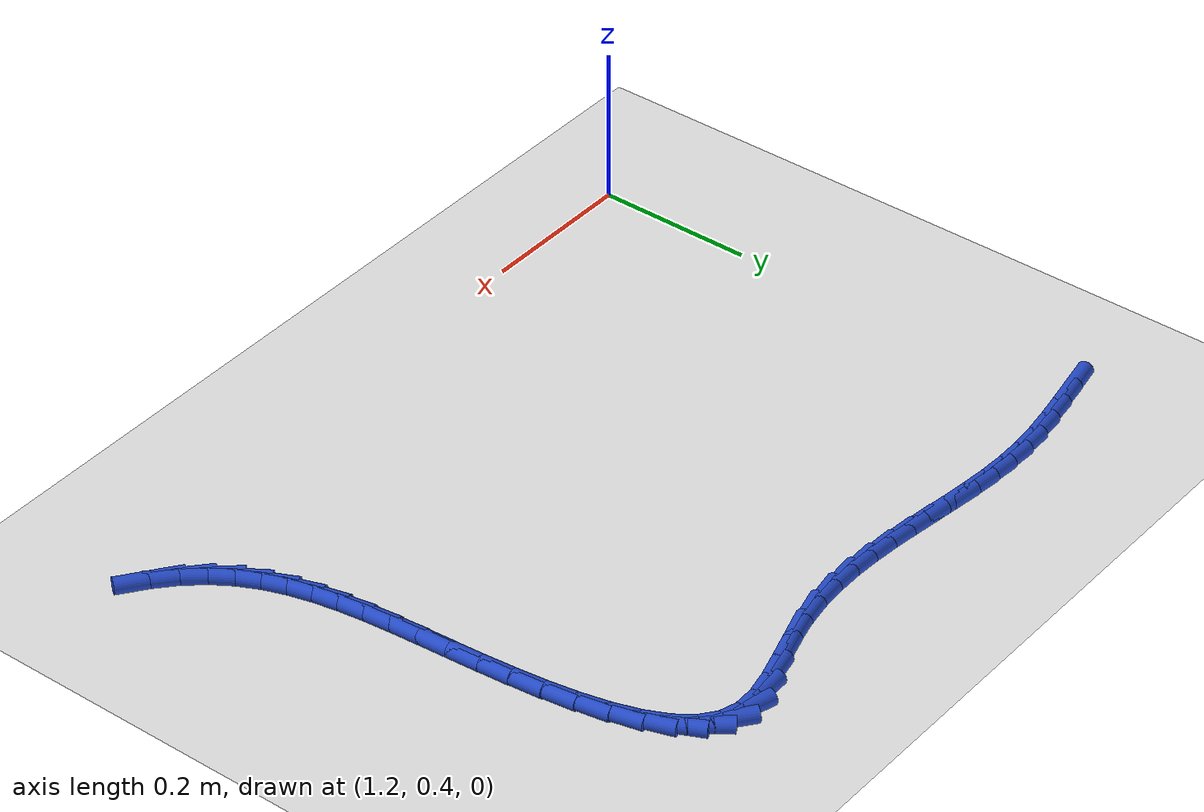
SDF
<sdf version="1.6">
 <world name="default">
  <model name="ground_plane">
   <static>1</static>
   <link name="link">
    <collision name="collision">
     <geometry><plane><normal>0 0 1</normal><size>100 100</size></plane></geometry>
     <surface><friction><ode><mu>100</mu><mu2>50</mu2></ode></friction></surface>
    </collision>
    <visual name="visual">
     <cast_shadows>0</cast_shadows>
     <geometry><plane><normal>0 0 1</normal><size>100 100</size></plane></geometry>
     <material>
      <script><uri>file://media/materials/scripts/gazebo.material</uri><name>Gazebo/WhiteGlow</name></script>
     </material>
    </visual>
   </link>
  </model>
  <model name="line">
   <link name="link_62">
    <pose>1.1844232793543754 1.0554053043927392 0.01 0 1.57 0.1845356645171906</pose>
    <collision name="collision">
     <geometry><cylinder><radius>0.01</radius><length>0.08</length></cylinder></geometry>
    </collision>
    <visual name="visual">
     <material>
      <script><name>Gazebo/Blue</name><uri>file://media/materials/scripts/gazebo.material</uri></script>
     </material>
     <geometry><cylinder><radius>0.01</radius><length>0.08</length></cylinder></geometry>
    </visual>
   </link>
   <link name="link_63">
    <pose>1.2171670416021767 1.0615172316574815 0.01 0 1.57 0.17218820459338285</pose>
    <collision name="collision">
     <geometry><cylinder><radius>0.01</radius><length>0.08</length></cylinder></geometry>
    </collision>
    <visual name="visual">
     <material>
      <script><name>Gazebo/Blue</name><uri>file://media/materials/scripts/gazebo.material</uri></script>
     </material>
     <geometry><cylinder><radius>0.01</radius><length>0.08</length></cylinder></geometry>
    </visual>
   </link>
   <link name="link_64">
    <pose>1.2498483909763347 1.067200856716296 0.01 0 1.57 0.13771133423715542</pose>
    <collision name="collision">
     <geometry><cylinder><radius>0.01</radius><length>0.08</length></cylinder></geometry>
    </collision>
    <visual name="visual">
     <material>
      <script><name>Gazebo/Blue</name><uri>file://media/materials/scripts/gazebo.material</uri></script>
     </material>
     <geometry><cylinder><radius>0.01</radius><length>0.08</length></cylinder></geometry>
    </visual>
   </link>
   <link name="link_65">
    <pose>1.2823676507040551 1.0717076530262313 0.01 0 1.57 0.07998828589498423</pose>
    <collision name="collision">
     <geometry><cylinder><radius>0.01</radius><length>0.08</length></cylinder></geometry>
    </collision>
    <visual name="visual">
     <material>
      <script><name>Gazebo/Blue</name><uri>file://media/materials/scripts/gazebo.material</uri></script>
     </material>
     <geometry><cylinder><radius>0.01</radius><length>0.08</length></cylinder></geometry>
    </visual>
   </link>
   <link name="link_66">
    <pose>1.314625760937037 1.0742934410561151 0.01 0 1.57 0.010227394941470406</pose>
    <collision name="collision">
     <geometry><cylinder><radius>0.01</radius><length>0.08</length></cylinder></geometry>
    </collision>
    <visual name="visual">
     <material>
      <script><name>Gazebo/Blue</name><uri>file://media/materials/scripts/gazebo.material</uri></script>
     </material>
     <geometry><cylinder><radius>0.01</radius><length>0.08</length></cylinder></geometry>
    </visual>
   </link>
   <link name="link_67">
    <pose>1.3465813141288823 1.0746202745148112 0.01 0 1.57 -0.0484710967883992</pose>
    <collision name="collision">
     <geometry><cylinder><radius>0.01</radius><length>0.08</length></cylinder></geometry>
    </collision>
    <visual name="visual">
     <material>
      <script><name>Gazebo/Blue</name><uri>file://media/materials/scripts/gazebo.material</uri></script>
     </material>
     <geometry><cylinder><radius>0.01</radius><length>0.08</length></cylinder></geometry>
    </visual>
   </link>
   <link name="link_68">
    <pose>1.378296728196593 1.0730817885572372 0.01 0 1.57 -0.09272041802726982</pose>
    <collision name="collision">
     <geometry><cylinder><radius>0.01</radius><length>0.08</length></cylinder></geometry>
    </collision>
    <visual name="visual">
     <material>
      <script><name>Gazebo/Blue</name><uri>file://media/materials/scripts/gazebo.material</uri></script>
     </material>
     <geometry><cylinder><radius>0.01</radius><length>0.08</length></cylinder></geometry>
    </visual>
   </link>
   <link name="link_69">
    <pose>1.4098452868233216 1.0701481813764424 0.01 0 1.57 -0.12205852579412695</pose>
    <collision name="collision">
     <geometry><cylinder><radius>0.01</radius><length>0.08</length></cylinder></geometry>
    </collision>
    <visual name="visual">
     <material>
      <script><name>Gazebo/Blue</name><uri>file://media/materials/scripts/gazebo.material</uri></script>
     </material>
     <geometry><cylinder><radius>0.01</radius><length>0.08</length></cylinder></geometry>
    </visual>
   </link>
   <link name="link_70">
    <pose>1.441300273692222 1.066289651165478 0.01 0 1.57 -0.1363616556768697</pose>
    <collision name="collision">
     <geometry><cylinder><radius>0.01</radius><length>0.08</length></cylinder></geometry>
    </collision>
    <visual name="visual">
     <material>
      <script><name>Gazebo/Blue</name><uri>file://media/materials/scripts/gazebo.material</uri></script>
     </material>
     <geometry><cylinder><radius>0.01</radius><length>0.08</length></cylinder></geometry>
    </visual>
   </link>
   <link name="link_71">
    <pose>1.472734972486446 1.0619763961173934 0.01 0 1.57 -0.13565258812657902</pose>
    <collision name="collision">
     <geometry><cylinder><radius>0.01</radius><length>0.08</length></cylinder></geometry>
    </collision>
    <visual name="visual">
     <material>
      <script><name>Gazebo/Blue</name><uri>file://media/materials/scripts/gazebo.material</uri></script>
     </material>
     <geometry><cylinder><radius>0.01</radius><length>0.08</length></cylinder></geometry>
    </visual>
   </link>
   <link name="link_72">
    <pose>1.5042226668891485 1.0576786144252386 0.01 0 1.57 -0.12000368366399121</pose>
    <collision name="collision">
     <geometry><cylinder><radius>0.01</radius><length>0.08</length></cylinder></geometry>
    </collision>
    <visual name="visual">
     <material>
      <script><name>Gazebo/Blue</name><uri>file://media/materials/scripts/gazebo.material</uri></script>
     </material>
     <geometry><cylinder><radius>0.01</radius><length>0.08</length></cylinder></geometry>
    </visual>
   </link>
   <link name="link_73">
    <pose>1.535836640583481 1.0538665042820645 0.01 0 1.57 -0.08954059487010384</pose>
    <collision name="collision">
     <geometry><cylinder><radius>0.01</radius><length>0.08</length></cylinder></geometry>
    </collision>
    <visual name="visual">
     <material>
      <script><name>Gazebo/Blue</name><uri>file://media/materials/scripts/gazebo.material</uri></script>
     </material>
     <geometry><cylinder><radius>0.01</radius><length>0.08</length></cylinder></geometry>
    </visual>
   </link>
   <link name="link_74">
    <pose>1.5676501772525977 1.0510102638809204 0.01 0 1.57 -0.04454308435029531</pose>
    <collision name="collision">
     <geometry><cylinder><radius>0.01</radius><length>0.08</length></cylinder></geometry>
    </collision>
    <visual name="visual">
     <material>
      <script><name>Gazebo/Blue</name><uri>file://media/materials/scripts/gazebo.material</uri></script>
     </material>
     <geometry><cylinder><radius>0.01</radius><length>0.08</length></cylinder></geometry>
    </visual>
   </link>
   <link name="link_75">
    <pose>1.599736560579651 1.0495800914148568 0.01 0 1.57 0.014370196008240849</pose>
    <collision name="collision">
     <geometry><cylinder><radius>0.01</radius><length>0.08</length></cylinder></geometry>
    </collision>
    <visual name="visual">
     <material>
      <script><name>Gazebo/Blue</name><uri>file://media/materials/scripts/gazebo.material</uri></script>
     </material>
     <geometry><cylinder><radius>0.01</radius><length>0.08</length></cylinder></geometry>
    </visual>
   </link>
   <link name="link_76">
    <pose>1.6321690742477937 1.0500461850769236 0.01 0 1.57 0.08600925522141821</pose>
    <collision name="collision">
     <geometry><cylinder><radius>0.01</radius><length>0.08</length></cylinder></geometry>
    </collision>
    <visual name="visual">
     <material>
      <script><name>Gazebo/Blue</name><uri>file://media/materials/scripts/gazebo.material</uri></script>
     </material>
     <geometry><cylinder><radius>0.01</radius><length>0.08</length></cylinder></geometry>
    </visual>
   </link>
   <link name="link_77">
    <pose>1.6650210019401799 1.0528787430601712 0.01 0 1.57 0.16840864182320414</pose>
    <collision name="collision">
     <geometry><cylinder><radius>0.01</radius><length>0.08</length></cylinder></geometry>
    </collision>
    <visual name="visual">
     <material>
      <script><name>Gazebo/Blue</name><uri>file://media/materials/scripts/gazebo.material</uri></script>
     </material>
     <geometry><cylinder><radius>0.01</radius><length>0.08</length></cylinder></geometry>
    </visual>
   </link>
   <link name="link_78">
    <pose>1.698365627339962 1.0585479635576496 0.01 0 1.57 0.2545476252437074</pose>
    <collision name="collision">
     <geometry><cylinder><radius>0.01</radius><length>0.08</length></cylinder></geometry>
    </collision>
    <visual name="visual">
     <material>
      <script><name>Gazebo/Blue</name><uri>file://media/materials/scripts/gazebo.material</uri></script>
     </material>
     <geometry><cylinder><radius>0.01</radius><length>0.08</length></cylinder></geometry>
    </visual>
   </link>
   <link name="link_79">
    <pose>1.7322175355558753 1.0673559495904146 0.01 0 1.57 0.3014308451783119</pose>
    <collision name="collision">
     <geometry><cylinder><radius>0.01</radius><length>0.08</length></cylinder></geometry>
    </collision>
    <visual name="visual">
     <material>
      <script><name>Gazebo/Blue</name><uri>file://media/materials/scripts/gazebo.material</uri></script>
     </material>
     <geometry><cylinder><radius>0.01</radius><length>0.08</length></cylinder></geometry>
    </visual>
   </link>
   <link name="link_80">
    <pose>1.7659794784044798 1.0778526965091089 0.01 0 1.57 0.288111645964463</pose>
    <collision name="collision">
     <geometry><cylinder><radius>0.01</radius><length>0.08</length></cylinder></geometry>
    </collision>
    <visual name="visual">
     <material>
      <script><name>Gazebo/Blue</name><uri>file://media/materials/scripts/gazebo.material</uri></script>
     </material>
     <geometry><cylinder><radius>0.01</radius><length>0.08</length></cylinder></geometry>
    </visual>
   </link>
   <link name="link_81">
    <pose>1.798690578401799 1.087546874037273 0.01 0 1.57 0.20513981655084135</pose>
    <collision name="collision">
     <geometry><cylinder><radius>0.01</radius><length>0.08</length></cylinder></geometry>
    </collision>
    <visual name="visual">
     <material>
      <script><name>Gazebo/Blue</name><uri>file://media/materials/scripts/gazebo.material</uri></script>
     </material>
     <geometry><cylinder><radius>0.01</radius><length>0.08</length></cylinder></geometry>
    </visual>
   </link>
   <link name="link_82">
    <pose>1.8293851532663985 1.0939333923946895 0.01 0 1.57 0.02070149516500042</pose>
    <collision name="collision">
     <geometry><cylinder><radius>0.01</radius><length>0.08</length></cylinder></geometry>
    </collision>
    <visual name="visual">
     <material>
      <script><name>Gazebo/Blue</name><uri>file://media/materials/scripts/gazebo.material</uri></script>
     </material>
     <geometry><cylinder><radius>0.01</radius><length>0.08</length></cylinder></geometry>
    </visual>
   </link>
   <link name="link_83">
    <pose>1.8570975207168425 1.0945071618011408 0.01 0 1.57 -0.30284562523795694</pose>
    <collision name="collision">
     <geometry><cylinder><radius>0.01</radius><length>0.08</length></cylinder></geometry>
    </collision>
    <visual name="visual">
     <material>
      <script><name>Gazebo/Blue</name><uri>file://media/materials/scripts/gazebo.material</uri></script>
     </material>
     <geometry><cylinder><radius>0.01</radius><length>0.08</length></cylinder></geometry>
    </visual>
   </link>
   <link name="link_84">
    <pose>1.8809682199243507 1.087048596527883 0.01 0 1.57 -0.6574080307313552</pose>
    <collision name="collision">
     <geometry><cylinder><radius>0.01</radius><length>0.08</length></cylinder></geometry>
    </collision>
    <visual name="visual">
     <material>
      <script><name>Gazebo/Blue</name><uri>file://media/materials/scripts/gazebo.material</uri></script>
     </material>
     <geometry><cylinder><radius>0.01</radius><length>0.08</length></cylinder></geometry>
    </visual>
   </link>
   <link name="link_85">
    <pose>1.9009795616434255 1.0716006406029694 0.01 0 1.57 -0.9331448604624866</pose>
    <collision name="collision">
     <geometry><cylinder><radius>0.01</radius><length>0.08</length></cylinder></geometry>
    </collision>
    <visual name="visual">
     <material>
      <script><name>Gazebo/Blue</name><uri>file://media/materials/scripts/gazebo.material</uri></script>
     </material>
     <geometry><cylinder><radius>0.01</radius><length>0.08</length></cylinder></geometry>
    </visual>
   </link>
   <link name="link_86">
    <pose>1.9175145420305069 1.049283207939171 0.01 0 1.57 -1.1239987708524335</pose>
    <collision name="collision">
     <geometry><cylinder><radius>0.01</radius><length>0.08</length></cylinder></geometry>
    </collision>
    <visual name="visual">
     <material>
      <script><name>Gazebo/Blue</name><uri>file://media/materials/scripts/gazebo.material</uri></script>
     </material>
     <geometry><cylinder><radius>0.01</radius><length>0.08</length></cylinder></geometry>
    </visual>
   </link>
   <link name="link_87">
    <pose>1.930958606579573 1.021222795825519 0.01 0 1.57 -1.2532851027462428</pose>
    <collision name="collision">
     <geometry><cylinder><radius>0.01</radius><length>0.08</length></cylinder></geometry>
    </collision>
    <visual name="visual">
     <material>
      <script><name>Gazebo/Blue</name><uri>file://media/materials/scripts/gazebo.material</uri></script>
     </material>
     <geometry><cylinder><radius>0.01</radius><length>0.08</length></cylinder></geometry>
    </visual>
   </link>
   <link name="link_88">
    <pose>1.9416972007846 0.9885459015510446 0.01 0 1.57 -1.3420985782314852</pose>
    <collision name="collision">
     <geometry><cylinder><radius>0.01</radius><length>0.08</length></cylinder></geometry>
    </collision>
    <visual name="visual">
     <material>
      <script><name>Gazebo/Blue</name><uri>file://media/materials/scripts/gazebo.material</uri></script>
     </material>
     <geometry><cylinder><radius>0.01</radius><length>0.08</length></cylinder></geometry>
    </visual>
   </link>
   <link name="link_89">
    <pose>1.9501157701395662 0.9523790224047783 0.01 0 1.57 -1.4040758105081967</pose>
    <collision name="collision">
     <geometry><cylinder><radius>0.01</radius><length>0.08</length></cylinder></geometry>
    </collision>
    <visual name="visual">
     <material>
      <script><name>Gazebo/Blue</name><uri>file://media/materials/scripts/gazebo.material</uri></script>
     </material>
     <geometry><cylinder><radius>0.01</radius><length>0.08</length></cylinder></geometry>
    </visual>
   </link>
   <link name="link_90">
    <pose>1.9565997601384482 0.9138486556757519 0.01 0 1.57 -1.447334341616804</pose>
    <collision name="collision">
     <geometry><cylinder><radius>0.01</radius><length>0.08</length></cylinder></geometry>
    </collision>
    <visual name="visual">
     <material>
      <script><name>Gazebo/Blue</name><uri>file://media/materials/scripts/gazebo.material</uri></script>
     </material>
     <geometry><cylinder><radius>0.01</radius><length>0.08</length></cylinder></geometry>
    </visual>
   </link>
   <link name="link_91">
    <pose>1.9615346162752223 0.8740812986529958 0.01 0 1.57 -1.4765087529756196</pose>
    <collision name="collision">
     <geometry><cylinder><radius>0.01</radius><length>0.08</length></cylinder></geometry>
    </collision>
    <visual name="visual">
     <material>
      <script><name>Gazebo/Blue</name><uri>file://media/materials/scripts/gazebo.material</uri></script>
     </material>
     <geometry><cylinder><radius>0.01</radius><length>0.08</length></cylinder></geometry>
    </visual>
   </link>
   <link name="link_92">
    <pose>1.9653057840438655 0.8342034486255412 0.01 0 1.57 -1.4939409872384355</pose>
    <collision name="collision">
     <geometry><cylinder><radius>0.01</radius><length>0.08</length></cylinder></geometry>
    </collision>
    <visual name="visual">
     <material>
      <script><name>Gazebo/Blue</name><uri>file://media/materials/scripts/gazebo.material</uri></script>
     </material>
     <geometry><cylinder><radius>0.01</radius><length>0.08</length></cylinder></geometry>
    </visual>
   </link>
   <link name="link_93">
    <pose>1.968301474854559 0.79530191952927 0.01 0 1.57 -1.500124668350733</pose>
    <collision name="collision">
     <geometry><cylinder><radius>0.01</radius><length>0.08</length></cylinder></geometry>
    </collision>
    <visual name="visual">
     <material>
      <script><name>Gazebo/Blue</name><uri>file://media/materials/scripts/gazebo.material</uri></script>
     </material>
     <geometry><cylinder><radius>0.01</radius><length>0.08</length></cylinder></geometry>
    </visual>
   </link>
   <link name="link_94">
    <pose>1.9709515903632617 0.7578653839884442 0.01 0 1.57 -1.493978853736317</pose>
    <collision name="collision">
     <geometry><cylinder><radius>0.01</radius><length>0.08</length></cylinder></geometry>
    </collision>
    <visual name="visual">
     <material>
      <script><name>Gazebo/Blue</name><uri>file://media/materials/scripts/gazebo.material</uri></script>
     </material>
     <geometry><cylinder><radius>0.01</radius><length>0.08</length></cylinder></geometry>
    </visual>
   </link>
   <link name="link_95">
    <pose>1.9737182816250836 0.7219198237136903 0.01 0 1.57 -1.4739402076145902</pose>
    <collision name="collision">
     <geometry><cylinder><radius>0.01</radius><length>0.08</length></cylinder></geometry>
    </collision>
    <visual name="visual">
     <material>
      <script><name>Gazebo/Blue</name><uri>file://media/materials/scripts/gazebo.material</uri></script>
     </material>
     <geometry><cylinder><radius>0.01</radius><length>0.08</length></cylinder></geometry>
    </visual>
   </link>
   <link name="link_96">
    <pose>1.977064538332379 0.6874791882586834 0.01 0 1.57 -1.4382673659171128</pose>
    <collision name="collision">
     <geometry><cylinder><radius>0.01</radius><length>0.08</length></cylinder></geometry>
    </collision>
    <visual name="visual">
     <material>
      <script><name>Gazebo/Blue</name><uri>file://media/materials/scripts/gazebo.material</uri></script>
     </material>
     <geometry><cylinder><radius>0.01</radius><length>0.08</length></cylinder></geometry>
    </visual>
   </link>
   <link name="link_97">
    <pose>1.9814533501775022 0.6545574271770981 0.01 0 1.57 -1.3851735284225686</pose>
    <collision name="collision">
     <geometry><cylinder><radius>0.01</radius><length>0.08</length></cylinder></geometry>
    </collision>
    <visual name="visual">
     <material>
      <script><name>Gazebo/Blue</name><uri>file://media/materials/scripts/gazebo.material</uri></script>
     </material>
     <geometry><cylinder><radius>0.01</radius><length>0.08</length></cylinder></geometry>
    </visual>
   </link>
   <link name="link_98">
    <pose>1.987347706852808 0.6231684900226095 0.01 0 1.57 -1.3131689508341493</pose>
    <collision name="collision">
     <geometry><cylinder><radius>0.01</radius><length>0.08</length></cylinder></geometry>
    </collision>
    <visual name="visual">
     <material>
      <script><name>Gazebo/Blue</name><uri>file://media/materials/scripts/gazebo.material</uri></script>
     </material>
     <geometry><cylinder><radius>0.01</radius><length>0.08</length></cylinder></geometry>
    </visual>
   </link>
   <link name="link_99">
    <pose>1.99521059805065 0.5933263263488924 0.01 0 1.57 -1.2217050976580177</pose>
    <collision name="collision">
     <geometry><cylinder><radius>0.01</radius><length>0.08</length></cylinder></geometry>
    </collision>
    <visual name="visual">
     <material>
      <script><name>Gazebo/Blue</name><uri>file://media/materials/scripts/gazebo.material</uri></script>
     </material>
     <geometry><cylinder><radius>0.01</radius><length>0.08</length></cylinder></geometry>
    </visual>
   </link>
   <link name="link_100">
    <pose>2.0055050134633823 0.5650448857096215 0.01 0 1.57 -1.112087074585562</pose>
    <collision name="collision">
     <geometry><cylinder><radius>0.01</radius><length>0.08</length></cylinder></geometry>
    </collision>
    <visual name="visual">
     <material>
      <script><name>Gazebo/Blue</name><uri>file://media/materials/scripts/gazebo.material</uri></script>
     </material>
     <geometry><cylinder><radius>0.01</radius><length>0.08</length></cylinder></geometry>
    </visual>
   </link>
   <link name="link_101">
    <pose>2.0186939427833592 0.5383381176584715 0.01 0 1.57 -0.9882985814596701</pose>
    <collision name="collision">
     <geometry><cylinder><radius>0.01</radius><length>0.08</length></cylinder></geometry>
    </collision>
    <visual name="visual">
     <material>
      <script><name>Gazebo/Blue</name><uri>file://media/materials/scripts/gazebo.material</uri></script>
     </material>
     <geometry><cylinder><radius>0.01</radius><length>0.08</length></cylinder></geometry>
    </visual>
   </link>
   <link name="link_102">
    <pose>2.0352403757029354 0.5132199717491175 0.01 0 1.57 -0.8570271997223394</pose>
    <collision name="collision">
     <geometry><cylinder><radius>0.01</radius><length>0.08</length></cylinder></geometry>
    </collision>
    <visual name="visual">
     <material>
      <script><name>Gazebo/Blue</name><uri>file://media/materials/scripts/gazebo.material</uri></script>
     </material>
     <geometry><cylinder><radius>0.01</radius><length>0.08</length></cylinder></geometry>
    </visual>
   </link>
   <link name="link_103">
    <pose>2.055607301914464 0.4897043975352341 0.01 0 1.57 -0.7295971118241893</pose>
    <collision name="collision">
     <geometry><cylinder><radius>0.01</radius><length>0.08</length></cylinder></geometry>
    </collision>
    <visual name="visual">
     <material>
      <script><name>Gazebo/Blue</name><uri>file://media/materials/scripts/gazebo.material</uri></script>
     </material>
     <geometry><cylinder><radius>0.01</radius><length>0.08</length></cylinder></geometry>
    </visual>
   </link>
   <link name="link_104">
    <pose>2.0801269045937816 0.46777915912810747 0.01 0 1.57 -0.634532130063444</pose>
    <collision name="collision">
     <geometry><cylinder><radius>0.01</radius><length>0.08</length></cylinder></geometry>
    </collision>
    <visual name="visual">
     <material>
      <script><name>Gazebo/Blue</name><uri>file://media/materials/scripts/gazebo.material</uri></script>
     </material>
     <geometry><cylinder><radius>0.01</radius><length>0.08</length></cylinder></geometry>
    </visual>
   </link>
  </model>
 </world>
</sdf>
